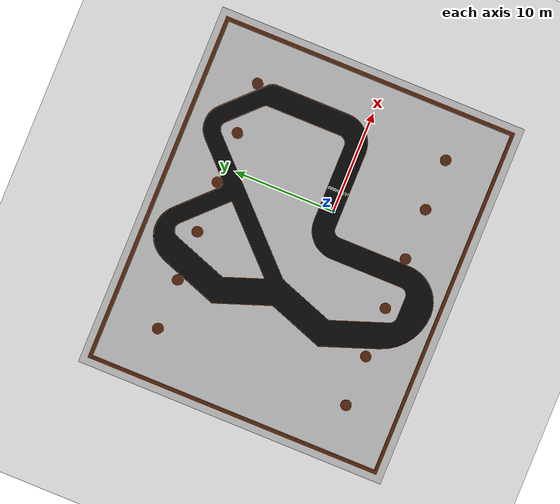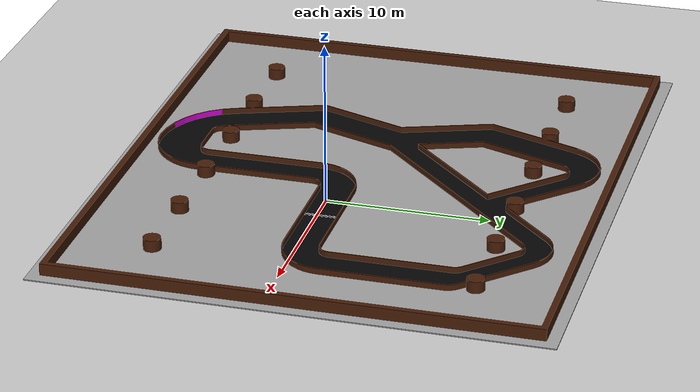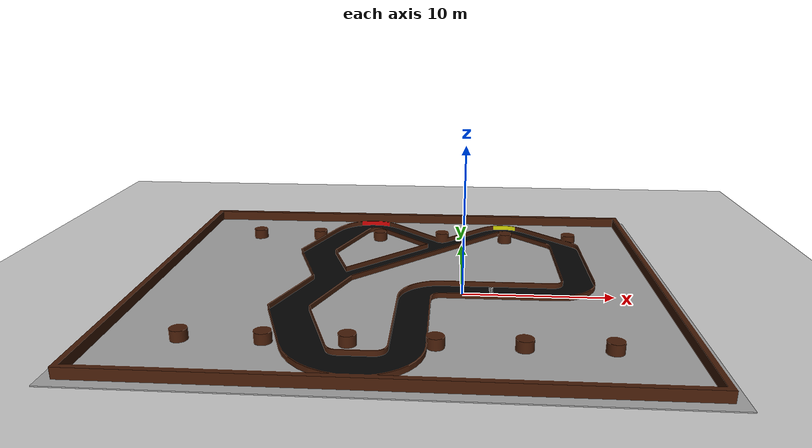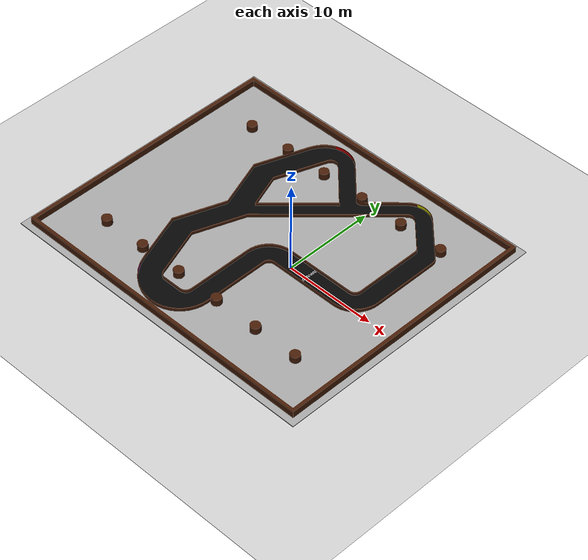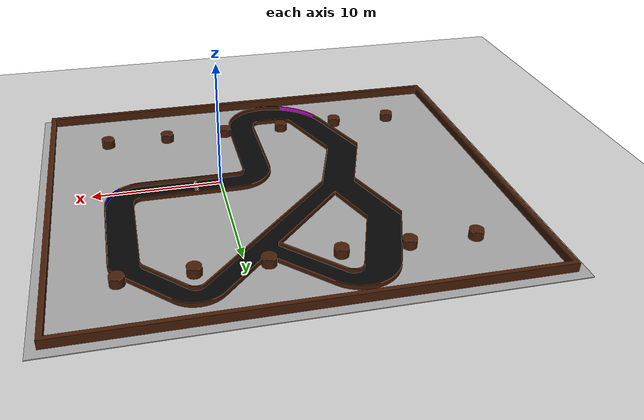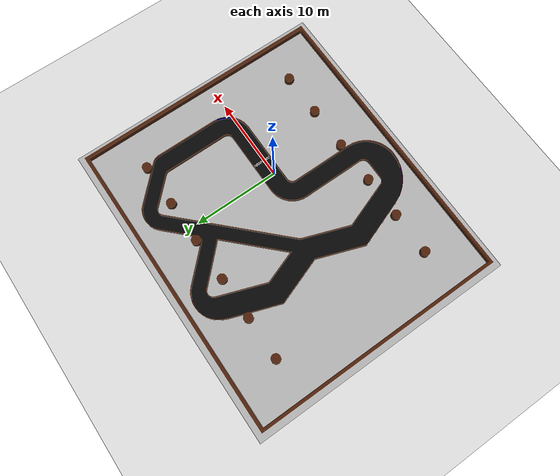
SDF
<sdf version="1.7">
 <world name="default">
  <plugin name="gazebo_ros_state" filename="libgazebo_ros_state.so">
   <ros>
    <namespace>/</namespace>
    <argument>model_states:=model_states_demo</argument>
    <argument>link_states:=link_states_demo</argument>
   </ros>
   <update_rate>1.0</update_rate>
  </plugin>
  <light name="sun" type="directional">
   <pose>0 0 10 0 -0 0</pose>
   <diffuse>0.8 0.8 0.8 1</diffuse>
   <specular>0.2 0.2 0.2 1</specular>
   <attenuation>
    <range>1000</range>
    <constant>0.9</constant>
    <linear>0.01</linear>
    <quadratic>0.001</quadratic>
   </attenuation>
   <direction>-0.5 0.1 -0.9</direction>
   <spot><inner_angle>0</inner_angle><outer_angle>0</outer_angle><falloff>0</falloff></spot>
  </light>
  <model name="ground_plane">
   <static>1</static>
   <link name="link">
    <collision name="collision">
     <geometry><plane><normal>0 0 1</normal><size>100 100</size></plane></geometry>
     <surface>
      <contact><collide_bitmask>65535</collide_bitmask></contact>
      <friction><ode><mu>100</mu><mu2>50</mu2></ode></friction>
     </surface>
    </collision>
    <visual name="visual">
     <cast_shadows>0</cast_shadows>
     <geometry><plane><normal>0 0 1</normal><size>100 100</size></plane></geometry>
     <material>
      <script><uri>file://media/materials/scripts/gazebo.material</uri><name>Gazebo/Grey</name></script>
     </material>
    </visual>
   </link>
  </model>
  <gravity>0 0 -9.8</gravity>
  <magnetic_field>6e-06 2.3e-05 -4.2e-05</magnetic_field>
  <atmosphere type="adiabatic"/>
  <physics type="ode">
   <max_step_size>0.001</max_step_size>
   <real_time_factor>1</real_time_factor>
   <real_time_update_rate>1000</real_time_update_rate>
  </physics>
  <scene><ambient>0.4 0.4 0.4 1</ambient><background>0.7 0.7 0.7 1</background><shadows>1</shadows></scene>
  <spherical_coordinates>
   <surface_model>EARTH_WGS84</surface_model>
   <latitude_deg>0</latitude_deg>
   <longitude_deg>0</longitude_deg>
   <elevation>0</elevation>
   <heading_deg>0</heading_deg>
  </spherical_coordinates>
  <model name="walker_racecourse">
   <link name="link">
    <collision name="collision">
     <geometry><mesh><uri>model://walker_racecourse/walker_racecourse.dae</uri></mesh></geometry>
    </collision>
    <visual name="visual">
     <geometry><mesh><uri>model://walker_racecourse/walker_racecourse.dae</uri></mesh></geometry>
    </visual>
   </link>
   <static>1</static>
   <pose>-4 2 -0.34 0 0 -1.5707</pose>
  </model>
  <light name="user_directional_light_0" type="directional">
   <pose>0.037591 2.74653 1 0 -0 0</pose>
   <diffuse>0.5 0.5 0.5 1</diffuse>
   <specular>0.1 0.1 0.1 1</specular>
   <direction>0.1 0.1 -0.9</direction>
   <attenuation>
    <range>20</range>
    <constant>0.5</constant>
    <linear>0.01</linear>
    <quadratic>0.001</quadratic>
   </attenuation>
  </light>
 </world>
</sdf>
